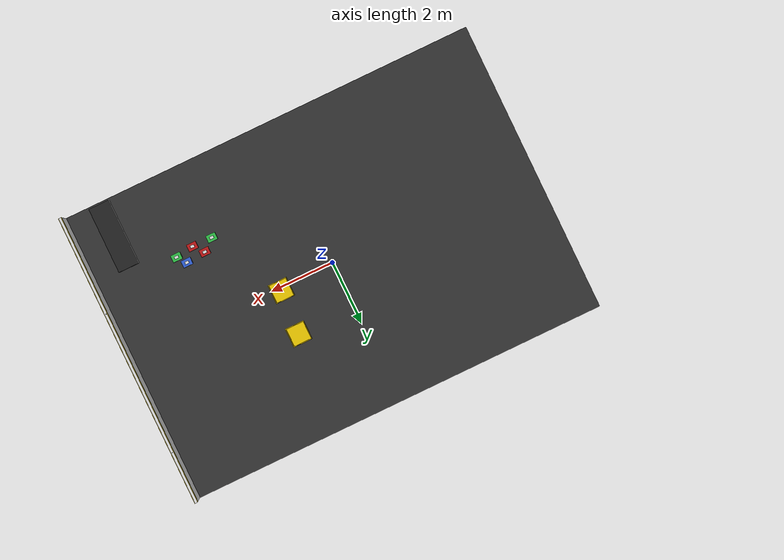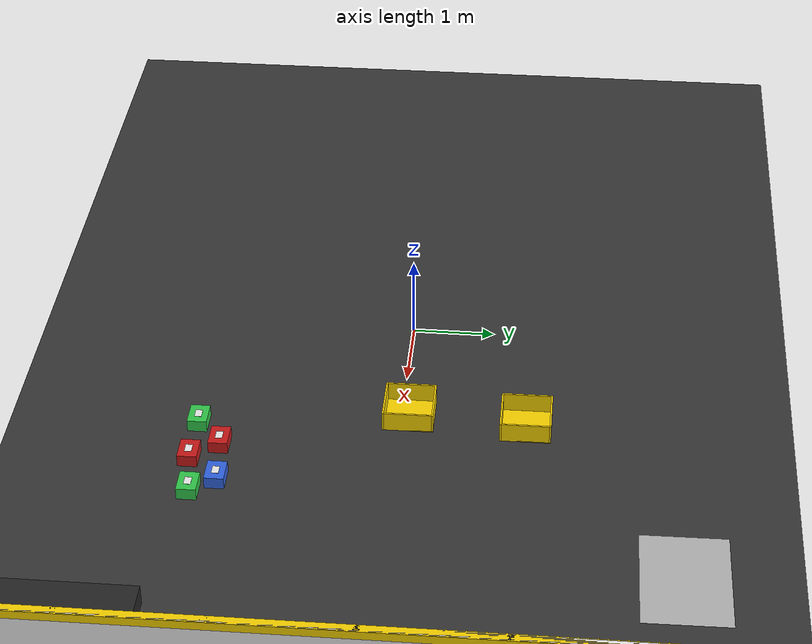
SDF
<sdf version="1.7">
 <world name="warehouse_exact">
  <model name="ground_plane">
   <static>1</static>
   <link name="link">
    <collision name="collision">
     <geometry><box><size>13.2 9.2 0.02</size></box></geometry>
     <surface><friction><ode><mu>1.0</mu><mu2>1.0</mu2></ode></friction></surface>
    </collision>
    <visual name="visual">
     <cast_shadows>0</cast_shadows>
     <geometry><box><size>13.2 9.2 0.02</size></box></geometry>
     <material>
      <ambient>0.22 0.22 0.22 1</ambient>
      <diffuse>0.22 0.22 0.22 1</diffuse>
      <specular>0 0 0 1</specular>
     </material>
    </visual>
   </link>
  </model>
  <model name="barrier_east">
   <pose>6.6 0 0.6 0 -0 0</pose>
   <static>1</static>
   <link name="link">
    <collision name="collision"><geometry><box><size>0.08 9.2 1.2</size></box></geometry></collision>
    <visual name="panel">
     <geometry><box><size>0.08 9.2 1.2</size></box></geometry>
     <material><ambient>0.95 0.95 0.95 1</ambient><diffuse>0.95 0.95 0.95 1</diffuse></material>
    </visual>
    <visual name="yellow_top">
     <pose>0 0 0.55 0 -0 0</pose>
     <geometry><box><size>0.1 9.2 0.1</size></box></geometry>
     <material><ambient>1 0.85 0 1</ambient><diffuse>1 0.85 0 1</diffuse></material>
    </visual>
   </link>
   <link name="support_1">
    <pose>0 -3 0 0 -0 0</pose>
    <visual name="visual">
     <geometry><cylinder><radius>0.04</radius><length>1.2</length></cylinder></geometry>
     <material><ambient>0.1 0.1 0.1 1</ambient><diffuse>0.1 0.1 0.1 1</diffuse></material>
    </visual>
   </link>
   <link name="support_2">
    <pose>0 -1.5 0 0 -0 0</pose>
    <visual name="visual">
     <geometry><cylinder><radius>0.04</radius><length>1.2</length></cylinder></geometry>
     <material><ambient>0.1 0.1 0.1 1</ambient><diffuse>0.1 0.1 0.1 1</diffuse></material>
    </visual>
   </link>
   <link name="support_3">
    <visual name="visual">
     <geometry><cylinder><radius>0.04</radius><length>1.2</length></cylinder></geometry>
     <material><ambient>0.1 0.1 0.1 1</ambient><diffuse>0.1 0.1 0.1 1</diffuse></material>
    </visual>
   </link>
   <link name="support_4">
    <pose>0 1.5 0 0 -0 0</pose>
    <visual name="visual">
     <geometry><cylinder><radius>0.04</radius><length>1.2</length></cylinder></geometry>
     <material><ambient>0.1 0.1 0.1 1</ambient><diffuse>0.1 0.1 0.1 1</diffuse></material>
    </visual>
   </link>
   <link name="support_5">
    <pose>0 3 0 0 -0 0</pose>
    <visual name="visual">
     <geometry><cylinder><radius>0.04</radius><length>1.2</length></cylinder></geometry>
     <material><ambient>0.1 0.1 0.1 1</ambient><diffuse>0.1 0.1 0.1 1</diffuse></material>
    </visual>
   </link>
  </model>
  <model name="position_circle_2">
   <pose>0 0 0.002 0 -0 0</pose>
   <static>1</static>
   <link name="link">
    <visual name="yellow_outer">
     <geometry><cylinder><radius>0.5</radius><length>0.004</length></cylinder></geometry>
     <material><ambient>1 0.85 0 1</ambient><diffuse>1 0.85 0 1</diffuse></material>
    </visual>
    <visual name="white_center">
     <pose>0 0 0.001 0 -0 0</pose>
     <geometry><cylinder><radius>0.42</radius><length>0.004</length></cylinder></geometry>
     <material><ambient>0.98 0.98 0.98 1</ambient><diffuse>0.98 0.98 0.98 1</diffuse></material>
    </visual>
    <visual name="seg_A">
     <pose>0 0.14 0.002 0 -0 0</pose>
     <geometry><box><size>0.26 0.05 0.004</size></box></geometry>
     <material><ambient>0.1 0.1 0.1 1</ambient><diffuse>0.1 0.1 0.1 1</diffuse></material>
    </visual>
    <visual name="seg_B">
     <pose>0.11 0.05 0.002 0 -0 0</pose>
     <geometry><box><size>0.05 0.18 0.004</size></box></geometry>
     <material><ambient>0.1 0.1 0.1 1</ambient><diffuse>0.1 0.1 0.1 1</diffuse></material>
    </visual>
    <visual name="seg_G">
     <pose>0 0 0.002 0 -0 0</pose>
     <geometry><box><size>0.26 0.05 0.004</size></box></geometry>
     <material><ambient>0.1 0.1 0.1 1</ambient><diffuse>0.1 0.1 0.1 1</diffuse></material>
    </visual>
    <visual name="seg_E">
     <pose>-0.11 -0.07 0.002 0 -0 0</pose>
     <geometry><box><size>0.05 0.18 0.004</size></box></geometry>
     <material><ambient>0.1 0.1 0.1 1</ambient><diffuse>0.1 0.1 0.1 1</diffuse></material>
    </visual>
    <visual name="seg_D">
     <pose>0 -0.14 0.002 0 -0 0</pose>
     <geometry><box><size>0.26 0.05 0.004</size></box></geometry>
     <material><ambient>0.1 0.1 0.1 1</ambient><diffuse>0.1 0.1 0.1 1</diffuse></material>
    </visual>
   </link>
  </model>
  <model name="position_circle_3">
   <pose>0 -2.25907 0.002 0 -0 0</pose>
   <static>1</static>
   <link name="link">
    <visual name="yellow_outer">
     <geometry><cylinder><radius>0.5</radius><length>0.004</length></cylinder></geometry>
     <material><ambient>1 0.85 0 1</ambient><diffuse>1 0.85 0 1</diffuse></material>
    </visual>
    <visual name="white_center">
     <pose>0 0 0.001 0 -0 0</pose>
     <geometry><cylinder><radius>0.42</radius><length>0.004</length></cylinder></geometry>
     <material><ambient>0.98 0.98 0.98 1</ambient><diffuse>0.98 0.98 0.98 1</diffuse></material>
    </visual>
    <visual name="seg_A">
     <pose>0 0.14 0.002 0 -0 0</pose>
     <geometry><box><size>0.26 0.05 0.004</size></box></geometry>
     <material><ambient>0.1 0.1 0.1 1</ambient><diffuse>0.1 0.1 0.1 1</diffuse></material>
    </visual>
    <visual name="seg_B">
     <pose>0.11 0.05 0.002 0 -0 0</pose>
     <geometry><box><size>0.05 0.18 0.004</size></box></geometry>
     <material><ambient>0.1 0.1 0.1 1</ambient><diffuse>0.1 0.1 0.1 1</diffuse></material>
    </visual>
    <visual name="seg_G">
     <pose>0 0 0.002 0 -0 0</pose>
     <geometry><box><size>0.26 0.05 0.004</size></box></geometry>
     <material><ambient>0.1 0.1 0.1 1</ambient><diffuse>0.1 0.1 0.1 1</diffuse></material>
    </visual>
    <visual name="seg_C">
     <pose>0.11 -0.07 0.002 0 -0 0</pose>
     <geometry><box><size>0.05 0.18 0.004</size></box></geometry>
     <material><ambient>0.1 0.1 0.1 1</ambient><diffuse>0.1 0.1 0.1 1</diffuse></material>
    </visual>
    <visual name="seg_D">
     <pose>0 -0.14 0.002 0 -0 0</pose>
     <geometry><box><size>0.26 0.05 0.004</size></box></geometry>
     <material><ambient>0.1 0.1 0.1 1</ambient><diffuse>0.1 0.1 0.1 1</diffuse></material>
    </visual>
   </link>
  </model>
  <model name="yellow_crate_right_top">
   <pose>1.81528 1.47793 0.125 0 -0 0</pose>
   <static>1</static>
   <link name="bottom">
    <pose>0 0 -0.115 0 -0 0</pose>
    <collision name="collision"><geometry><box><size>0.6 0.6 0.02</size></box></geometry></collision>
    <visual name="visual">
     <geometry><box><size>0.6 0.6 0.02</size></box></geometry>
     <material><ambient>1 0.85 0 1</ambient><diffuse>1 0.85 0 1</diffuse></material>
    </visual>
   </link>
   <link name="wall_front">
    <pose>0 0.29 0 0 -0 0</pose>
    <collision name="collision"><geometry><box><size>0.6 0.02 0.25</size></box></geometry></collision>
    <visual name="visual">
     <geometry><box><size>0.6 0.02 0.25</size></box></geometry>
     <material><ambient>1 0.85 0 1</ambient><diffuse>1 0.85 0 1</diffuse></material>
    </visual>
   </link>
   <link name="wall_back">
    <pose>0 -0.29 0 0 -0 0</pose>
    <collision name="collision"><geometry><box><size>0.6 0.02 0.25</size></box></geometry></collision>
    <visual name="visual">
     <geometry><box><size>0.6 0.02 0.25</size></box></geometry>
     <material><ambient>1 0.85 0 1</ambient><diffuse>1 0.85 0 1</diffuse></material>
    </visual>
   </link>
   <link name="wall_left">
    <pose>-0.29 0 0 0 -0 0</pose>
    <collision name="collision"><geometry><box><size>0.02 0.56 0.25</size></box></geometry></collision>
    <visual name="visual">
     <geometry><box><size>0.02 0.56 0.25</size></box></geometry>
     <material><ambient>1 0.85 0 1</ambient><diffuse>1 0.85 0 1</diffuse></material>
    </visual>
   </link>
   <link name="wall_right">
    <pose>0.29 0 0 0 -0 0</pose>
    <collision name="collision"><geometry><box><size>0.02 0.56 0.25</size></box></geometry></collision>
    <visual name="visual">
     <geometry><box><size>0.02 0.56 0.25</size></box></geometry>
     <material><ambient>1 0.85 0 1</ambient><diffuse>1 0.85 0 1</diffuse></material>
    </visual>
   </link>
  </model>
  <model name="yellow_crate_right_middle">
   <pose>1.72345 0.095428 0.125 0 -0 0</pose>
   <static>1</static>
   <link name="bottom">
    <pose>0 0 -0.115 0 -0 0</pose>
    <collision name="collision"><geometry><box><size>0.6 0.6 0.02</size></box></geometry></collision>
    <visual name="visual">
     <geometry><box><size>0.6 0.6 0.02</size></box></geometry>
     <material><ambient>1 0.85 0 1</ambient><diffuse>1 0.85 0 1</diffuse></material>
    </visual>
   </link>
   <link name="wall_front">
    <pose>0 0.29 0 0 -0 0</pose>
    <collision name="collision"><geometry><box><size>0.6 0.02 0.25</size></box></geometry></collision>
    <visual name="visual">
     <geometry><box><size>0.6 0.02 0.25</size></box></geometry>
     <material><ambient>1 0.85 0 1</ambient><diffuse>1 0.85 0 1</diffuse></material>
    </visual>
   </link>
   <link name="wall_back">
    <pose>0 -0.29 0 0 -0 0</pose>
    <collision name="collision"><geometry><box><size>0.6 0.02 0.25</size></box></geometry></collision>
    <visual name="visual">
     <geometry><box><size>0.6 0.02 0.25</size></box></geometry>
     <material><ambient>1 0.85 0 1</ambient><diffuse>1 0.85 0 1</diffuse></material>
    </visual>
   </link>
   <link name="wall_left">
    <pose>-0.29 0 0 0 -0 0</pose>
    <collision name="collision"><geometry><box><size>0.02 0.56 0.25</size></box></geometry></collision>
    <visual name="visual">
     <geometry><box><size>0.02 0.56 0.25</size></box></geometry>
     <material><ambient>1 0.85 0 1</ambient><diffuse>1 0.85 0 1</diffuse></material>
    </visual>
   </link>
   <link name="wall_right">
    <pose>0.29 0 0 0 -0 0</pose>
    <collision name="collision"><geometry><box><size>0.02 0.56 0.25</size></box></geometry></collision>
    <visual name="visual">
     <geometry><box><size>0.02 0.56 0.25</size></box></geometry>
     <material><ambient>1 0.85 0 1</ambient><diffuse>1 0.85 0 1</diffuse></material>
    </visual>
   </link>
  </model>
  <model name="charging_zone">
   <static>0</static>
   <pose>4.33076 3.30509 0.005 0 -0 0.009465</pose>
   <link name="link">
    <collision name="collision"><geometry><box><size>1.4 1 0.01</size></box></geometry></collision>
    <visual name="charging_visual">
     <geometry><box><size>1.4 1 0.01</size></box></geometry>
     <cast_shadows>0</cast_shadows>
     <material>
      <script>
       <uri>file:///home/douaa/Lab_moveit/src/my_gazebo_world/materials/scripts/charging.material</uri>
       <uri>file:///home/douaa/Lab_moveit/src/my_gazebo_world/materials/textures/charging_zone_no_alpha.png</uri>
       <name>ChargingZone</name>
      </script>
     </material>
    </visual>
    <inertial>
     <inertia><ixx>1</ixx><ixy>0</ixy><ixz>0</ixz><iyy>1</iyy><iyz>0</iyz><izz>1</izz></inertia>
     <mass>1</mass>
    </inertial>
   </link>
  </model>
  <model name="safety_zone_right">
   <pose>3.5 -2.2 0.004 0 -0 0</pose>
   <static>1</static>
   <link name="link">
    <visual name="black_stripe_1">
     <pose>-0.35 0 0 0 -0 0.785</pose>
     <geometry><box><size>1.6 0.08 0.002</size></box></geometry>
     <material><ambient>0.1 0.1 0.1 1</ambient><diffuse>0.1 0.1 0.1 1</diffuse></material>
    </visual>
    <visual name="black_stripe_2">
     <pose>-0.15 0 0 0 -0 0.785</pose>
     <geometry><box><size>1.6 0.08 0.002</size></box></geometry>
     <material><ambient>0.1 0.1 0.1 1</ambient><diffuse>0.1 0.1 0.1 1</diffuse></material>
    </visual>
    <visual name="black_stripe_3">
     <pose>0.05 0 0 0 -0 0.785</pose>
     <geometry><box><size>1.6 0.08 0.002</size></box></geometry>
     <material><ambient>0.1 0.1 0.1 1</ambient><diffuse>0.1 0.1 0.1 1</diffuse></material>
    </visual>
    <visual name="black_stripe_4">
     <pose>0.25 0 0 0 -0 0.785</pose>
     <geometry><box><size>1.6 0.08 0.002</size></box></geometry>
     <material><ambient>0.1 0.1 0.1 1</ambient><diffuse>0.1 0.1 0.1 1</diffuse></material>
    </visual>
    <visual name="black_stripe_5">
     <pose>0.45 0 0 0 -0 0.785</pose>
     <geometry><box><size>1.6 0.08 0.002</size></box></geometry>
     <material><ambient>0.1 0.1 0.1 1</ambient><diffuse>0.1 0.1 0.1 1</diffuse></material>
    </visual>
   </link>
  </model>
  <model name="black_table_right">
   <pose>5.5 -3.5 0.001 0 0 1.5708</pose>
   <static>1</static>
   <link name="link">
    <collision name="collision"><geometry><box><size>2.07016 0.65 0.50258</size></box></geometry></collision>
    <visual name="visual">
     <geometry><box><size>2.07016 0.65 0.50258</size></box></geometry>
     <material><ambient>0.15 0.15 0.15 1</ambient><diffuse>0.15 0.15 0.15 1</diffuse></material>
    </visual>
   </link>
  </model>
  <model name="cardboard_package_right">
   <pose>3.5 -2.2 0.72 0 -0 0</pose>
   <static>1</static>
   <link name="link">
    <collision name="collision"><geometry><box><size>0.3 0.22 0.14</size></box></geometry></collision>
    <visual name="visual">
     <geometry><box><size>0.3 0.22 0.14</size></box></geometry>
     <material><ambient>0.8 0.1 0.1 1</ambient><diffuse>0.8 0.1 0.1 1</diffuse></material>
    </visual>
    <visual name="label">
     <pose>0 0 0.071 0 -0 0</pose>
     <geometry><box><size>0.12 0.08 0.001</size></box></geometry>
     <material><ambient>0.95 0.95 0.95 1</ambient><diffuse>0.95 0.95 0.95 1</diffuse></material>
    </visual>
   </link>
  </model>
  <model name="cardboard_package_right_clone">
   <pose>4.05543 -2.11537 0.72 0 -0 0</pose>
   <static>1</static>
   <link name="link">
    <collision name="collision"><geometry><box><size>0.3 0.22 0.14</size></box></geometry></collision>
    <visual name="visual">
     <geometry><box><size>0.3 0.22 0.14</size></box></geometry>
     <material><ambient>0.2 0.8 0.3 1</ambient><diffuse>0.2 0.8 0.3 1</diffuse></material>
    </visual>
    <visual name="label">
     <pose>0 0 0.071 0 -0 0</pose>
     <geometry><box><size>0.12 0.08 0.001</size></box></geometry>
     <material><ambient>0.95 0.95 0.95 1</ambient><diffuse>0.95 0.95 0.95 1</diffuse></material>
    </visual>
   </link>
  </model>
  <model name="cardboard_package_right_clone_0">
   <pose>2.87812 -2.19148 0.72 0 -0 0</pose>
   <static>1</static>
   <link name="link">
    <collision name="collision"><geometry><box><size>0.3 0.22 0.14</size></box></geometry></collision>
    <visual name="visual">
     <geometry><box><size>0.3 0.22 0.14</size></box></geometry>
     <material><ambient>0.2 0.8 0.3 1</ambient><diffuse>0.2 0.8 0.3 1</diffuse></material>
    </visual>
    <visual name="label">
     <pose>0 0 0.071 0 -0 0</pose>
     <geometry><box><size>0.12 0.08 0.001</size></box></geometry>
     <material><ambient>0.95 0.95 0.95 1</ambient><diffuse>0.95 0.95 0.95 1</diffuse></material>
    </visual>
   </link>
  </model>
  <model name="cardboard_package_right_clone_1">
   <pose>3.24058 -1.89845 0.72 0 -0 0</pose>
   <static>1</static>
   <link name="link">
    <collision name="collision"><geometry><box><size>0.3 0.22 0.14</size></box></geometry></collision>
    <visual name="visual">
     <geometry><box><size>0.3 0.22 0.14</size></box></geometry>
     <material><ambient>0.8 0.1 0.1 1</ambient><diffuse>0.8 0.1 0.1 1</diffuse></material>
    </visual>
    <visual name="label">
     <pose>0 0 0.071 0 -0 0</pose>
     <geometry><box><size>0.12 0.08 0.001</size></box></geometry>
     <material><ambient>0.95 0.95 0.95 1</ambient><diffuse>0.95 0.95 0.95 1</diffuse></material>
    </visual>
   </link>
  </model>
  <model name="cardboard_package_right_clone_2">
   <pose>3.84717 -1.84499 0.72 0 -0 0</pose>
   <static>1</static>
   <link name="link">
    <collision name="collision"><geometry><box><size>0.3 0.22 0.14</size></box></geometry></collision>
    <visual name="visual">
     <geometry><box><size>0.3 0.22 0.14</size></box></geometry>
     <material><ambient>0.2 0.4 0.9 1</ambient><diffuse>0.2 0.4 0.9 1</diffuse></material>
    </visual>
    <visual name="label">
     <pose>0 0 0.071 0 -0 0</pose>
     <geometry><box><size>0.12 0.08 0.001</size></box></geometry>
     <material><ambient>0.95 0.95 0.95 1</ambient><diffuse>0.95 0.95 0.95 1</diffuse></material>
    </visual>
   </link>
  </model>
 </world>
</sdf>
